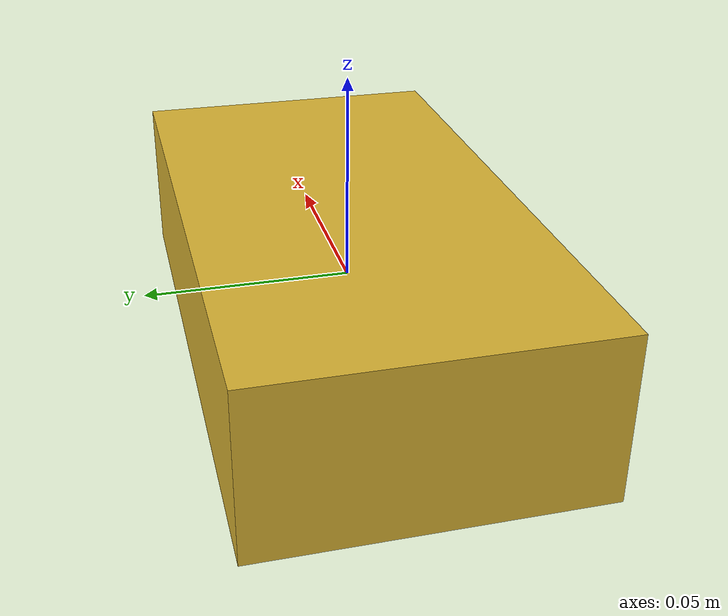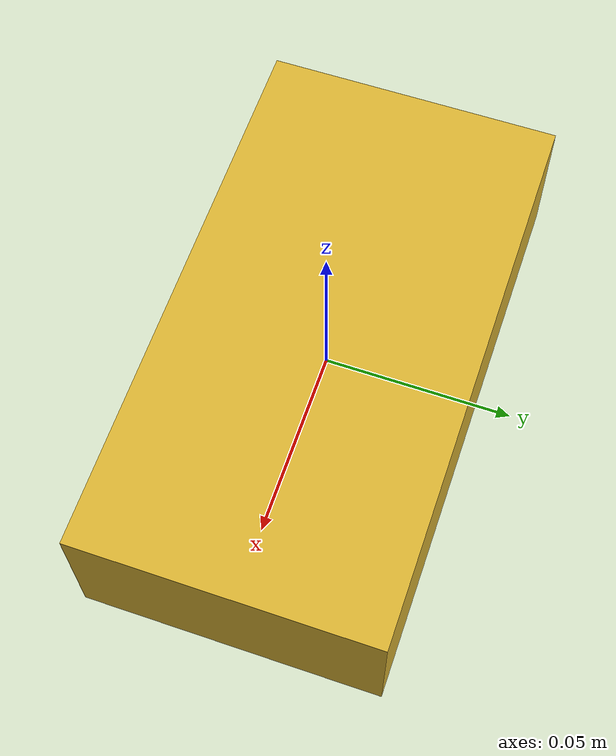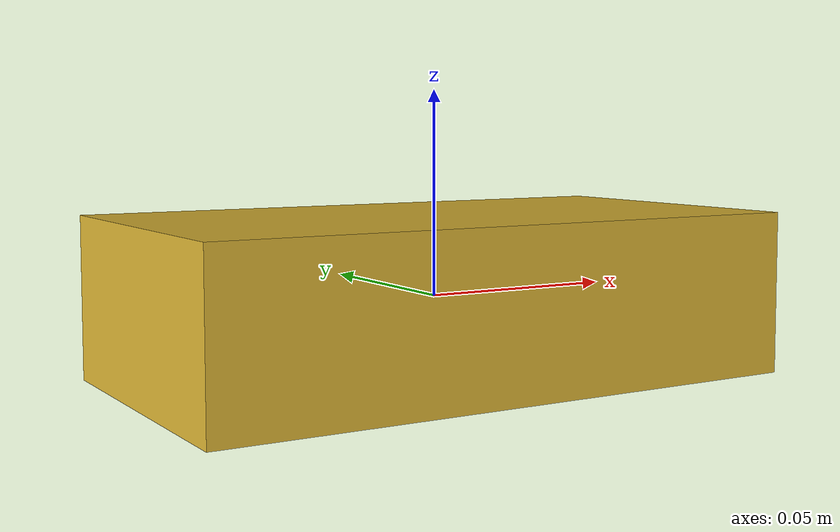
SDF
<?xml version="1.0" ?>
<sdf version="1.5">

  <model name="box1kg">
    <pose>0 0 0 0 0 0</pose>

    <self_collide>false</self_collide>
    <static>false</static>

    <link name="box">

      <inertial>
        <mass>1</mass>
        <inertia>
          <ixx>0.002</ixx>
          <iyy>0.002</iyy>
          <izz>0.0035</izz>
        </inertia>
      </inertial>

      <gravity>true</gravity>
      <self_collide>false</self_collide>
      <velocity_decay/>

      <visual name="box_visual">
        <pose>0 0 0 0 0 0</pose>
        <geometry>
          <box>
            <size>0.15 0.08 0.04</size>
          </box>
        </geometry>
        <material>
          <script>
            <name>Gazebo/Gold</name>
            <uri>file://media/materials/scripts/gazebo.material</uri>
          </script>
        </material>
      </visual>

      <collision name="box_collision">
        <pose>0 0 0 0 0 0</pose>
        <geometry>
          <box>
            <size>0.15 0.08 0.04</size>
          </box>
        </geometry>
        <surface>
          <contact>
            <ode>
              <min_depth>0.001</min_depth>
              <max_vel>0</max_vel>
            </ode>
          </contact>
          <friction>
            <ode/>
          </friction>
        </surface>
      </collision>
    </link>

  </model>

</sdf>

<!-- vim: set et ft=xml fenc=utf-8 ff=unix sts=0 sw=2 ts=2 : -->
